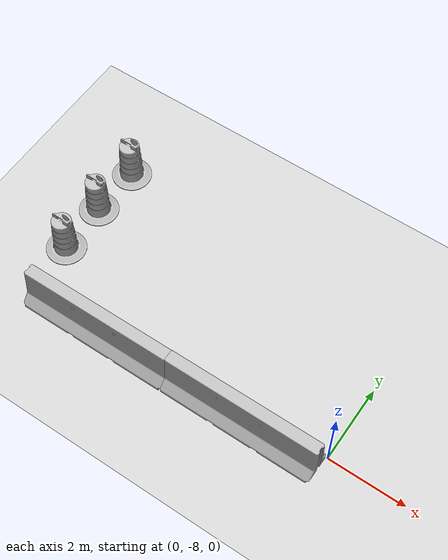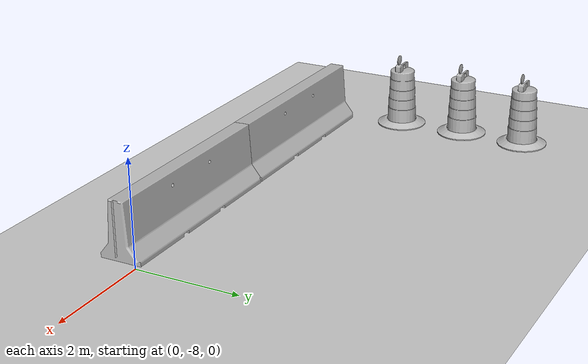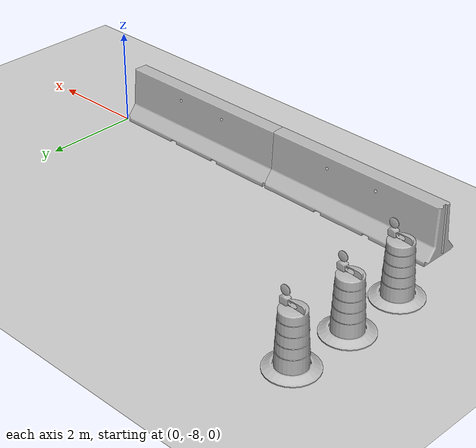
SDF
<sdf version="1.7">
 <world name="default">
  <light name="sun" type="directional">
   <pose>0 0 10 0 -0 0</pose>
   <diffuse>0.8 0.8 0.8 1</diffuse>
   <specular>0.2 0.2 0.2 1</specular>
   <attenuation>
    <range>1000</range>
    <constant>0.9</constant>
    <linear>0.01</linear>
    <quadratic>0.001</quadratic>
   </attenuation>
   <direction>-0.5 0.1 -0.9</direction>
   <spot><inner_angle>0</inner_angle><outer_angle>0</outer_angle><falloff>0</falloff></spot>
  </light>
  <model name="ground_plane">
   <static>1</static>
   <link name="link">
    <collision name="collision">
     <geometry><plane><normal>0 0 1</normal><size>100 100</size></plane></geometry>
     <surface>
      <contact><collide_bitmask>65535</collide_bitmask></contact>
      <friction><ode><mu>100</mu><mu2>50</mu2></ode></friction>
     </surface>
    </collision>
    <visual name="visual">
     <cast_shadows>0</cast_shadows>
     <geometry><plane><normal>0 0 1</normal><size>100 100</size></plane></geometry>
     <material>
      <script><uri>file://media/materials/scripts/gazebo.material</uri><name>Gazebo/Grey</name></script>
     </material>
    </visual>
   </link>
  </model>
  <gravity>0 0 -9.8</gravity>
  <magnetic_field>6e-06 2.3e-05 -4.2e-05</magnetic_field>
  <atmosphere type="adiabatic"/>
  <physics type="ode">
   <max_step_size>0.001</max_step_size>
   <real_time_factor>1</real_time_factor>
   <real_time_update_rate>1000</real_time_update_rate>
  </physics>
  <scene><ambient>0.4 0.4 0.4 1</ambient><background>0.7 0.7 0.7 1</background><shadows>1</shadows></scene>
  <audio><device>default</device></audio>
  <spherical_coordinates>
   <surface_model>EARTH_WGS84</surface_model>
   <latitude_deg>0</latitude_deg>
   <longitude_deg>0</longitude_deg>
   <elevation>0</elevation>
   <heading_deg>0</heading_deg>
  </spherical_coordinates>
  <model name="Construction Barrel">
   <link name="link">
    <inertial>
     <pose>0 0 0.4 0 -0 0</pose>
     <mass>500</mass>
     <inertia><ixx>51.2096</ixx><iyy>51.2096</iyy><izz>25</izz><ixy>0</ixy><ixz>0</ixz><iyz>0</iyz></inertia>
    </inertial>
    <collision name="collision">
     <geometry><mesh><uri>model://construction_barrel/meshes/construction_barrel.dae</uri></mesh></geometry>
    </collision>
    <visual name="visual">
     <geometry><mesh><uri>model://construction_barrel/meshes/construction_barrel.dae</uri></mesh></geometry>
    </visual>
   </link>
   <pose>-8.26541 -4.18602 -2e-06 -0 7e-06 -8e-06</pose>
  </model>
  <model name="jersey_barrier">
   <static>1</static>
   <link name="link">
    <visual name="visual">
     <geometry><mesh><uri>model://jersey_barrier/meshes/jersey_barrier.dae</uri></mesh></geometry>
    </visual>
    <collision name="upright">
     <pose>0 0 0.5715 0 -0 0</pose>
     <geometry><box><size>4.06542 0.3063 1.143</size></box></geometry>
    </collision>
    <collision name="base">
     <pose>0 0 0.032258 0 -0 0</pose>
     <geometry><box><size>4.06542 0.8107 0.064516</size></box></geometry>
    </collision>
    <collision name="base2">
     <pose>0 0 0.1 0 -0 0</pose>
     <geometry><box><size>4.06542 0.65 0.1</size></box></geometry>
    </collision>
    <collision name="base3">
     <pose>0 0 0.2 0 -0 0</pose>
     <geometry><box><size>4.06542 0.5 0.1</size></box></geometry>
    </collision>
    <collision name="left-angle">
     <pose>0 -0.224 0.2401 0.9 -0 0</pose>
     <geometry><box><size>4.06542 0.5 0.064516</size></box></geometry>
    </collision>
    <collision name="right-angle">
     <pose>0 0.224 0.2401 -0.9 0 0</pose>
     <geometry><box><size>4.06542 0.5 0.064516</size></box></geometry>
    </collision>
   </link>
   <pose>-6.06841 -8.37903 0 0 -0 0</pose>
  </model>
  <model name="jersey_barrier_0">
   <static>1</static>
   <link name="link">
    <visual name="visual">
     <geometry><mesh><uri>model://jersey_barrier/meshes/jersey_barrier.dae</uri></mesh></geometry>
    </visual>
    <collision name="upright">
     <pose>0 0 0.5715 0 -0 0</pose>
     <geometry><box><size>4.06542 0.3063 1.143</size></box></geometry>
    </collision>
    <collision name="base">
     <pose>0 0 0.032258 0 -0 0</pose>
     <geometry><box><size>4.06542 0.8107 0.064516</size></box></geometry>
    </collision>
    <collision name="base2">
     <pose>0 0 0.1 0 -0 0</pose>
     <geometry><box><size>4.06542 0.65 0.1</size></box></geometry>
    </collision>
    <collision name="base3">
     <pose>0 0 0.2 0 -0 0</pose>
     <geometry><box><size>4.06542 0.5 0.1</size></box></geometry>
    </collision>
    <collision name="left-angle">
     <pose>0 -0.224 0.2401 0.9 -0 0</pose>
     <geometry><box><size>4.06542 0.5 0.064516</size></box></geometry>
    </collision>
    <collision name="right-angle">
     <pose>0 0.224 0.2401 -0.9 0 0</pose>
     <geometry><box><size>4.06542 0.5 0.064516</size></box></geometry>
    </collision>
   </link>
   <pose>-2.07433 -8.37351 0 0 -0 0</pose>
  </model>
  <model name="Construction Barrel_0">
   <link name="link">
    <inertial>
     <pose>0 0 0.4 0 -0 0</pose>
     <mass>500</mass>
     <inertia><ixx>51.2096</ixx><iyy>51.2096</iyy><izz>25</izz><ixy>0</ixy><ixz>0</ixz><iyz>0</iyz></inertia>
    </inertial>
    <collision name="collision">
     <geometry><mesh><uri>model://construction_barrel/meshes/construction_barrel.dae</uri></mesh></geometry>
    </collision>
    <visual name="visual">
     <geometry><mesh><uri>model://construction_barrel/meshes/construction_barrel.dae</uri></mesh></geometry>
    </visual>
   </link>
   <pose>-8.29893 -5.53478 0 0 0 -3e-06</pose>
  </model>
  <model name="Construction Barrel_1">
   <link name="link">
    <inertial>
     <pose>0 0 0.4 0 -0 0</pose>
     <mass>500</mass>
     <inertia><ixx>51.2096</ixx><iyy>51.2096</iyy><izz>25</izz><ixy>0</ixy><ixz>0</ixz><iyz>0</iyz></inertia>
    </inertial>
    <collision name="collision">
     <geometry><mesh><uri>model://construction_barrel/meshes/construction_barrel.dae</uri></mesh></geometry>
    </collision>
    <visual name="visual">
     <geometry><mesh><uri>model://construction_barrel/meshes/construction_barrel.dae</uri></mesh></geometry>
    </visual>
   </link>
   <pose>-8.26356 -6.90507 -1e-06 3e-06 -2e-06 -2e-06</pose>
  </model>
 </world>
</sdf>
